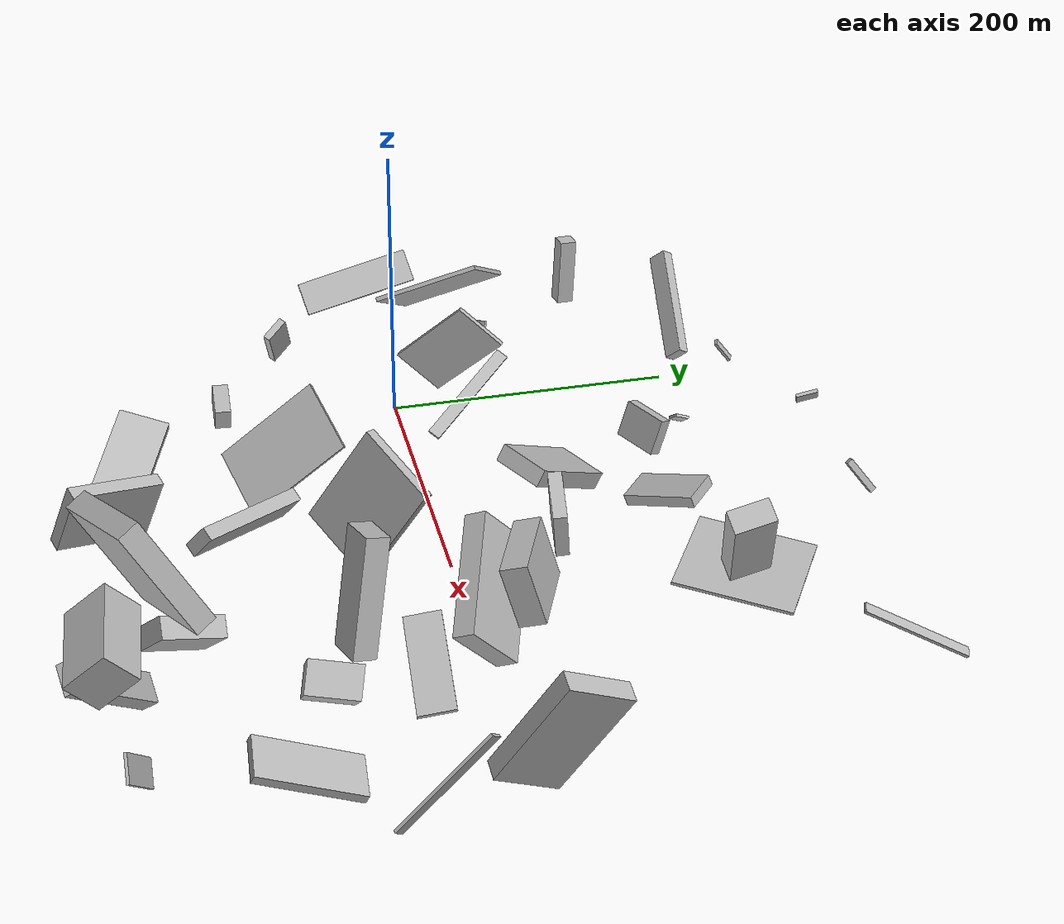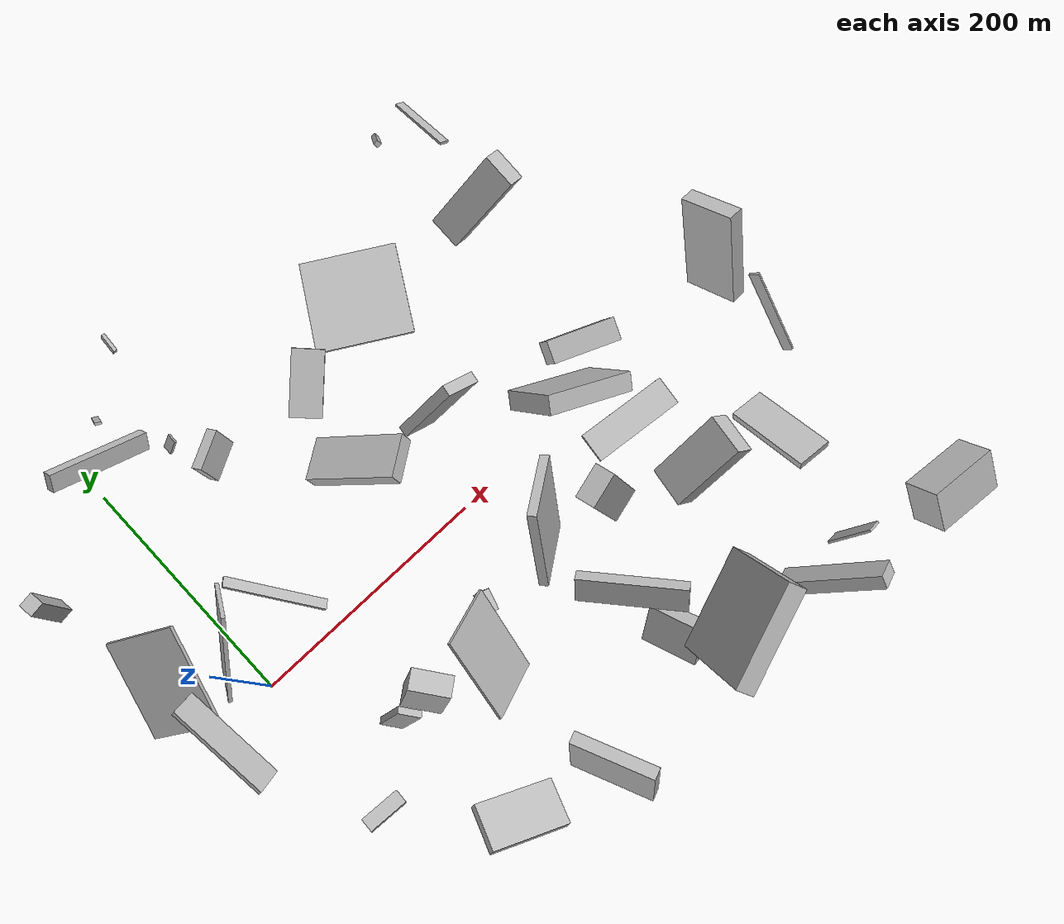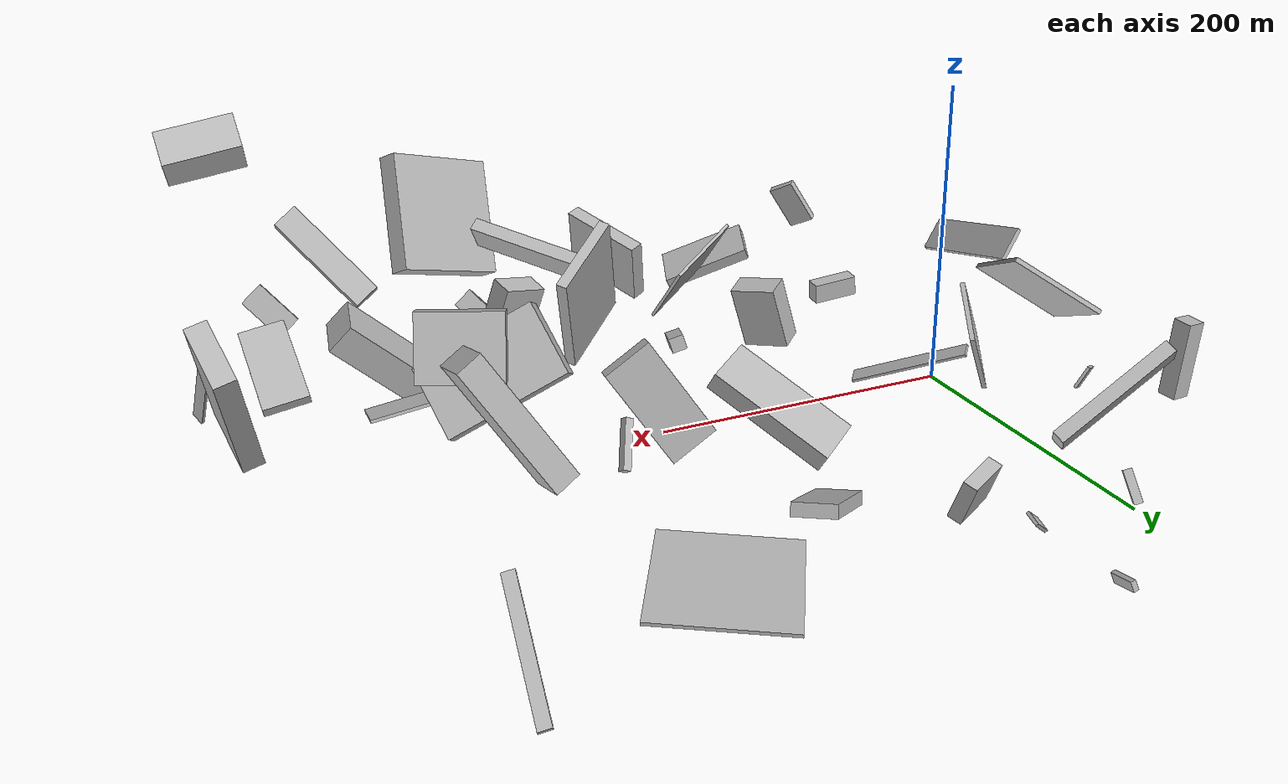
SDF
<sdf version="1.6">
 <world name="default">
  <scene>
   <sky><clouds><speed>12</speed></clouds></sky>
   <ambient>0.4 0.4 0.4 1</ambient>
   <background>0.7 0.7 0.7 1</background>
   <shadows>1</shadows>
  </scene>
  <gravity>0 0 -9.8066</gravity>
  <magnetic_field>6e-06 2.3e-05 -4.2e-05</magnetic_field>
  <physics default="0" name="default_physics" type="ode">
   <ode>
    <solver>
     <type>quick</type>
     <iters>10</iters>
     <sor>1.0</sor>
     <use_dynamic_moi_rescaling>0</use_dynamic_moi_rescaling>
    </solver>
    <constraints>
     <cfm>0</cfm>
     <erp>0.2</erp>
     <contact_max_correcting_vel>100</contact_max_correcting_vel>
     <contact_surface_layer>0.001</contact_surface_layer>
    </constraints>
   </ode>
   <max_step_size>0.004</max_step_size>
   <real_time_factor>1</real_time_factor>
   <real_time_update_rate>250</real_time_update_rate>
  </physics>
  <light name="sun" type="directional">
   <pose>0 0 10 0 0 0</pose>
   <diffuse>0.8 0.8 0.8 1</diffuse>
   <specular>0.2 0.2 0.2 1</specular>
   <attenuation>
    <range>1000</range>
    <constant>0.9</constant>
    <linear>0.01</linear>
    <quadratic>0.001</quadratic>
   </attenuation>
   <direction>-0.5 0.1 -0.9</direction>
  </light>
  <model name="building_1">
   <static>0</static>
   <pose>38.63190235395055 236.04126597552377 41.1396916519658 -2.6471198663712197 0.932345836124314 1.5941881646128018</pose>
   <link name="link">
    <gravity>0</gravity>
    <pose>0 0 1.0 0 0 0</pose>
    <collision name="collision"><geometry><box><size>19 5 2</size></box></geometry></collision>
    <visual name="visual">
     <cast_shadows>0</cast_shadows>
     <geometry><box><size>19 5 2</size></box></geometry>
     <material>
      <script>
       <uri>model://HANNAS_wall/materials/scripts</uri>
       <uri>model://HANNAS_wall/materials/textures</uri>
       <name>vrc/HANNAS_wall</name>
      </script>
     </material>
    </visual>
   </link>
  </model>
  <model name="building_2">
   <static>0</static>
   <pose>259.08048493539104 -173.6271087588978 25.075798798286392 -2.3688773548809356 0.34138990774704253 1.8755277085860944</pose>
   <link name="link">
    <gravity>0</gravity>
    <pose>0 0 15.5 0 0 0</pose>
    <collision name="collision"><geometry><box><size>45 15 31</size></box></geometry></collision>
    <visual name="visual">
     <cast_shadows>0</cast_shadows>
     <geometry><box><size>45 15 31</size></box></geometry>
     <material>
      <script>
       <uri>model://HANNAS_wall/materials/scripts</uri>
       <uri>model://HANNAS_wall/materials/textures</uri>
       <name>vrc/HANNAS_wall</name>
      </script>
     </material>
    </visual>
   </link>
  </model>
  <model name="building_3">
   <static>0</static>
   <pose>70.05203951509768 196.82535542254877 9.121220336357428 2.6676830289068194 0.7783943086531875 -0.3718957070586815</pose>
   <link name="link">
    <gravity>0</gravity>
    <pose>0 0 6.0 0 0 0</pose>
    <collision name="collision"><geometry><box><size>2 10 12</size></box></geometry></collision>
    <visual name="visual">
     <cast_shadows>0</cast_shadows>
     <geometry><box><size>2 10 12</size></box></geometry>
     <material>
      <script>
       <uri>model://HANNAS_wall/materials/scripts</uri>
       <uri>model://HANNAS_wall/materials/textures</uri>
       <name>vrc/HANNAS_wall</name>
      </script>
     </material>
    </visual>
   </link>
  </model>
  <model name="building_4">
   <static>0</static>
   <pose>383.1320415975673 245.40454795834793 44.133537318768404 -0.316377378219944 -0.5237048435464099 -1.7050735993151114</pose>
   <link name="link">
    <gravity>0</gravity>
    <pose>0 0 1.0 0 0 0</pose>
    <collision name="collision"><geometry><box><size>77 7 2</size></box></geometry></collision>
    <visual name="visual">
     <cast_shadows>0</cast_shadows>
     <geometry><box><size>77 7 2</size></box></geometry>
     <material>
      <script>
       <uri>model://HANNAS_wall/materials/scripts</uri>
       <uri>model://HANNAS_wall/materials/textures</uri>
       <name>vrc/HANNAS_wall</name>
      </script>
     </material>
    </visual>
   </link>
  </model>
  <model name="building_5">
   <static>0</static>
   <pose>-56.916125216058674 9.03227319772121 56.53812849885184 0.9189156404831178 -0.8703390747883846 -2.9364095581835175</pose>
   <link name="link">
    <gravity>0</gravity>
    <pose>0 0 39.0 0 0 0</pose>
    <collision name="collision"><geometry><box><size>3 63 78</size></box></geometry></collision>
    <visual name="visual">
     <cast_shadows>0</cast_shadows>
     <geometry><box><size>3 63 78</size></box></geometry>
     <material>
      <script>
       <uri>model://HANNAS_wall/materials/scripts</uri>
       <uri>model://HANNAS_wall/materials/textures</uri>
       <name>vrc/HANNAS_wall</name>
      </script>
     </material>
    </visual>
   </link>
  </model>
  <model name="building_6">
   <static>0</static>
   <pose>24.090662417068508 194.05806674890886 76.6667416465749 2.2174403626864168 -0.5827955219446157 3.0569843757480224</pose>
   <link name="link">
    <gravity>0</gravity>
    <pose>0 0 4.0 0 0 0</pose>
    <collision name="collision"><geometry><box><size>80 14 8</size></box></geometry></collision>
    <visual name="visual">
     <cast_shadows>0</cast_shadows>
     <geometry><box><size>80 14 8</size></box></geometry>
     <material>
      <script>
       <uri>model://HANNAS_wall/materials/scripts</uri>
       <uri>model://HANNAS_wall/materials/textures</uri>
       <name>vrc/HANNAS_wall</name>
      </script>
     </material>
    </visual>
   </link>
  </model>
  <model name="building_7">
   <static>0</static>
   <pose>353.7064749868066 -86.19520589659285 39.00508258421749 1.3726829667805274 -0.7240673701931237 -0.07119017279299611</pose>
   <link name="link">
    <gravity>0</gravity>
    <pose>0 0 16.5 0 0 0</pose>
    <collision name="collision"><geometry><box><size>66 21 33</size></box></geometry></collision>
    <visual name="visual">
     <cast_shadows>0</cast_shadows>
     <geometry><box><size>66 21 33</size></box></geometry>
     <material>
      <script>
       <uri>model://HANNAS_wall/materials/scripts</uri>
       <uri>model://HANNAS_wall/materials/textures</uri>
       <name>vrc/HANNAS_wall</name>
      </script>
     </material>
    </visual>
   </link>
  </model>
  <model name="building_8">
   <static>0</static>
   <pose>90.04146295819805 -79.53852775852259 28.127535313867057 0.5322993208006238 -1.2622411765487753 0.11991431140620133</pose>
   <link name="link">
    <gravity>0</gravity>
    <pose>0 0 8.5 0 0 0</pose>
    <collision name="collision"><geometry><box><size>45 32 17</size></box></geometry></collision>
    <visual name="visual">
     <cast_shadows>0</cast_shadows>
     <geometry><box><size>45 32 17</size></box></geometry>
     <material>
      <script>
       <uri>model://HANNAS_wall/materials/scripts</uri>
       <uri>model://HANNAS_wall/materials/textures</uri>
       <name>vrc/HANNAS_wall</name>
      </script>
     </material>
    </visual>
   </link>
  </model>
  <model name="building_9">
   <static>0</static>
   <pose>-36.753821153604235 -19.50307545493912 87.59729682443658 -2.272015209313348 -0.2051151007045469 1.6440154152920339</pose>
   <link name="link">
    <gravity>0</gravity>
    <pose>0 0 1.5 0 0 0</pose>
    <collision name="collision"><geometry><box><size>80 23 3</size></box></geometry></collision>
    <visual name="visual">
     <cast_shadows>0</cast_shadows>
     <geometry><box><size>80 23 3</size></box></geometry>
     <material>
      <script>
       <uri>model://HANNAS_wall/materials/scripts</uri>
       <uri>model://HANNAS_wall/materials/textures</uri>
       <name>vrc/HANNAS_wall</name>
      </script>
     </material>
    </visual>
   </link>
  </model>
  <model name="building_10">
   <static>0</static>
   <pose>-73.42286726431628 143.6173250577247 33.53616894649154 0.06133107305399381 0.04365892241309228 -3.0091064001080223</pose>
   <link name="link">
    <gravity>0</gravity>
    <pose>0 0 24.5 0 0 0</pose>
    <collision name="collision"><geometry><box><size>12 12 49</size></box></geometry></collision>
    <visual name="visual">
     <cast_shadows>0</cast_shadows>
     <geometry><box><size>12 12 49</size></box></geometry>
     <material>
      <script>
       <uri>model://HANNAS_wall/materials/scripts</uri>
       <uri>model://HANNAS_wall/materials/textures</uri>
       <name>vrc/HANNAS_wall</name>
      </script>
     </material>
    </visual>
   </link>
  </model>
  <model name="building_11">
   <static>0</static>
   <pose>273.7506687179418 -196.15026422645914 94.78446874097193 2.0129805566234173 -0.28238339114511674 0.3575963656567789</pose>
   <link name="link">
    <gravity>0</gravity>
    <pose>0 0 7.5 0 0 0</pose>
    <collision name="collision"><geometry><box><size>80 80 15</size></box></geometry></collision>
    <visual name="visual">
     <cast_shadows>0</cast_shadows>
     <geometry><box><size>80 80 15</size></box></geometry>
     <material>
      <script>
       <uri>model://HANNAS_wall/materials/scripts</uri>
       <uri>model://HANNAS_wall/materials/textures</uri>
       <name>vrc/HANNAS_wall</name>
      </script>
     </material>
    </visual>
   </link>
  </model>
  <model name="building_12">
   <static>0</static>
   <pose>-12.676365885485463 -124.98597027059726 22.740830010981234 2.5530331862472946 -1.4524990745846074 0.5336537273305068</pose>
   <link name="link">
    <gravity>0</gravity>
    <pose>0 0 16.0 0 0 0</pose>
    <collision name="collision"><geometry><box><size>14 11 32</size></box></geometry></collision>
    <visual name="visual">
     <cast_shadows>0</cast_shadows>
     <geometry><box><size>14 11 32</size></box></geometry>
     <material>
      <script>
       <uri>model://HANNAS_wall/materials/scripts</uri>
       <uri>model://HANNAS_wall/materials/textures</uri>
       <name>vrc/HANNAS_wall</name>
      </script>
     </material>
    </visual>
   </link>
  </model>
  <model name="building_13">
   <static>0</static>
   <pose>412.8646129225986 -94.37323064161967 20.017206783496114 0.42763275876697937 -1.1221760297074566 1.1020713526929717</pose>
   <link name="link">
    <gravity>0</gravity>
    <pose>0 0 34.5 0 0 0</pose>
    <collision name="collision"><geometry><box><size>6 30 69</size></box></geometry></collision>
    <visual name="visual">
     <cast_shadows>0</cast_shadows>
     <geometry><box><size>6 30 69</size></box></geometry>
     <material>
      <script>
       <uri>model://HANNAS_wall/materials/scripts</uri>
       <uri>model://HANNAS_wall/materials/textures</uri>
       <name>vrc/HANNAS_wall</name>
      </script>
     </material>
    </visual>
   </link>
  </model>
  <model name="building_14">
   <static>0</static>
   <pose>469.0396319640353 -60.93009688385808 58.68105357405017 -2.6597093150482958 -0.8256237212110216 1.57055343282918</pose>
   <link name="link">
    <gravity>0</gravity>
    <pose>0 0 4.0 0 0 0</pose>
    <collision name="collision"><geometry><box><size>80 2 8</size></box></geometry></collision>
    <visual name="visual">
     <cast_shadows>0</cast_shadows>
     <geometry><box><size>80 2 8</size></box></geometry>
     <material>
      <script>
       <uri>model://HANNAS_wall/materials/scripts</uri>
       <uri>model://HANNAS_wall/materials/textures</uri>
       <name>vrc/HANNAS_wall</name>
      </script>
     </material>
    </visual>
   </link>
  </model>
  <model name="building_15">
   <static>0</static>
   <pose>158.11180322373502 -245.07093742641243 47.40776409838427 -2.227941865606624 -1.2043407110295403 1.0359745221710788</pose>
   <link name="link">
    <gravity>0</gravity>
    <pose>0 0 32.5 0 0 0</pose>
    <collision name="collision"><geometry><box><size>47 10 65</size></box></geometry></collision>
    <visual name="visual">
     <cast_shadows>0</cast_shadows>
     <geometry><box><size>47 10 65</size></box></geometry>
     <material>
      <script>
       <uri>model://HANNAS_wall/materials/scripts</uri>
       <uri>model://HANNAS_wall/materials/textures</uri>
       <name>vrc/HANNAS_wall</name>
      </script>
     </material>
    </visual>
   </link>
  </model>
  <model name="building_16">
   <static>0</static>
   <pose>305.6181552812448 15.930679459890023 45.785015124884566 -0.53886389765386 -0.510509543247418 2.8210029440683524</pose>
   <link name="link">
    <gravity>0</gravity>
    <pose>0 0 23.5 0 0 0</pose>
    <collision name="collision"><geometry><box><size>80 15 47</size></box></geometry></collision>
    <visual name="visual">
     <cast_shadows>0</cast_shadows>
     <geometry><box><size>80 15 47</size></box></geometry>
     <material>
      <script>
       <uri>model://HANNAS_wall/materials/scripts</uri>
       <uri>model://HANNAS_wall/materials/textures</uri>
       <name>vrc/HANNAS_wall</name>
      </script>
     </material>
    </visual>
   </link>
  </model>
  <model name="building_17">
   <static>0</static>
   <pose>232.47595183376495 58.5818098835678 54.53181536874116 1.4466558020564686 -0.5902501232157829 3.047282106402702</pose>
   <link name="link">
    <gravity>0</gravity>
    <pose>0 0 4.5 0 0 0</pose>
    <collision name="collision"><geometry><box><size>31 69 9</size></box></geometry></collision>
    <visual name="visual">
     <cast_shadows>0</cast_shadows>
     <geometry><box><size>31 69 9</size></box></geometry>
     <material>
      <script>
       <uri>model://HANNAS_wall/materials/scripts</uri>
       <uri>model://HANNAS_wall/materials/textures</uri>
       <name>vrc/HANNAS_wall</name>
      </script>
     </material>
    </visual>
   </link>
  </model>
  <model name="building_18">
   <static>0</static>
   <pose>469.9073132064575 5.950312077972356 76.83739120368956 1.2940398641867357 -0.46050019467706393 -1.4104808909936306</pose>
   <link name="link">
    <gravity>0</gravity>
    <pose>0 0 6.5 0 0 0</pose>
    <collision name="collision"><geometry><box><size>44 80 13</size></box></geometry></collision>
    <visual name="visual">
     <cast_shadows>0</cast_shadows>
     <geometry><box><size>44 80 13</size></box></geometry>
     <material>
      <script>
       <uri>model://HANNAS_wall/materials/scripts</uri>
       <uri>model://HANNAS_wall/materials/textures</uri>
       <name>vrc/HANNAS_wall</name>
      </script>
     </material>
    </visual>
   </link>
  </model>
  <model name="building_19">
   <static>0</static>
   <pose>206.4614505003548 -71.34830422387536 89.80419176785261 -2.726388158167691 1.0348634400155008 -2.063799696818753</pose>
   <link name="link">
    <gravity>0</gravity>
    <pose>0 0 28.0 0 0 0</pose>
    <collision name="collision"><geometry><box><size>80 7 56</size></box></geometry></collision>
    <visual name="visual">
     <cast_shadows>0</cast_shadows>
     <geometry><box><size>80 7 56</size></box></geometry>
     <material>
      <script>
       <uri>model://HANNAS_wall/materials/scripts</uri>
       <uri>model://HANNAS_wall/materials/textures</uri>
       <name>vrc/HANNAS_wall</name>
      </script>
     </material>
    </visual>
   </link>
  </model>
  <model name="building_20">
   <static>0</static>
   <pose>330.908446621909 154.34691602926628 71.80066004925293 0.5614711017377177 -0.22552737481562918 1.5802169437900735</pose>
   <link name="link">
    <gravity>0</gravity>
    <pose>0 0 40.0 0 0 0</pose>
    <collision name="collision"><geometry><box><size>26 15 80</size></box></geometry></collision>
    <visual name="visual">
     <cast_shadows>0</cast_shadows>
     <geometry><box><size>26 15 80</size></box></geometry>
     <material>
      <script>
       <uri>model://HANNAS_wall/materials/scripts</uri>
       <uri>model://HANNAS_wall/materials/textures</uri>
       <name>vrc/HANNAS_wall</name>
      </script>
     </material>
    </visual>
   </link>
  </model>
  <model name="building_21">
   <static>0</static>
   <pose>375.0943390302742 -44.98481087216515 27.094226844738504 0.7590923091521211 -1.351259432527991 -0.8570929412445419</pose>
   <link name="link">
    <gravity>0</gravity>
    <pose>0 0 40.0 0 0 0</pose>
    <collision name="collision"><geometry><box><size>2 24 80</size></box></geometry></collision>
    <visual name="visual">
     <cast_shadows>0</cast_shadows>
     <geometry><box><size>2 24 80</size></box></geometry>
     <material>
      <script>
       <uri>model://HANNAS_wall/materials/scripts</uri>
       <uri>model://HANNAS_wall/materials/textures</uri>
       <name>vrc/HANNAS_wall</name>
      </script>
     </material>
    </visual>
   </link>
  </model>
  <model name="building_22">
   <static>0</static>
   <pose>79.31840213147106 -179.41688083132044 28.97593504943909 -1.3075624714774647 -0.4025226547070357 2.684262149412127</pose>
   <link name="link">
    <gravity>0</gravity>
    <pose>0 0 17.5 0 0 0</pose>
    <collision name="collision"><geometry><box><size>63 8 35</size></box></geometry></collision>
    <visual name="visual">
     <cast_shadows>0</cast_shadows>
     <geometry><box><size>63 8 35</size></box></geometry>
     <material>
      <script>
       <uri>model://HANNAS_wall/materials/scripts</uri>
       <uri>model://HANNAS_wall/materials/textures</uri>
       <name>vrc/HANNAS_wall</name>
      </script>
     </material>
    </visual>
   </link>
  </model>
  <model name="building_23">
   <static>0</static>
   <pose>53.73033552166649 -87.43007882544643 91.81454722594738 0.4743519549689461 0.28692750986378646 0.7694057049664796</pose>
   <link name="link">
    <gravity>0</gravity>
    <pose>0 0 15.0 0 0 0</pose>
    <collision name="collision"><geometry><box><size>5 17 30</size></box></geometry></collision>
    <visual name="visual">
     <cast_shadows>0</cast_shadows>
     <geometry><box><size>5 17 30</size></box></geometry>
     <material>
      <script>
       <uri>model://HANNAS_wall/materials/scripts</uri>
       <uri>model://HANNAS_wall/materials/textures</uri>
       <name>vrc/HANNAS_wall</name>
      </script>
     </material>
    </visual>
   </link>
  </model>
  <model name="building_24">
   <static>0</static>
   <pose>113.13391061299609 -106.14905127580418 75.50090666815768 2.2393039007734643 -0.7054820553704474 1.4281810255800276</pose>
   <link name="link">
    <gravity>0</gravity>
    <pose>0 0 25.5 0 0 0</pose>
    <collision name="collision"><geometry><box><size>80 2 51</size></box></geometry></collision>
    <visual name="visual">
     <cast_shadows>0</cast_shadows>
     <geometry><box><size>80 2 51</size></box></geometry>
     <material>
      <script>
       <uri>model://HANNAS_wall/materials/scripts</uri>
       <uri>model://HANNAS_wall/materials/textures</uri>
       <name>vrc/HANNAS_wall</name>
      </script>
     </material>
    </visual>
   </link>
  </model>
  <model name="building_25">
   <static>0</static>
   <pose>291.8829026198235 -68.11969506033907 52.37775154882862 1.7665078385865312 -0.22662096693393896 -1.3591304577239622</pose>
   <link name="link">
    <gravity>0</gravity>
    <pose>0 0 14.0 0 0 0</pose>
    <collision name="collision"><geometry><box><size>16 80 28</size></box></geometry></collision>
    <visual name="visual">
     <cast_shadows>0</cast_shadows>
     <geometry><box><size>16 80 28</size></box></geometry>
     <material>
      <script>
       <uri>model://HANNAS_wall/materials/scripts</uri>
       <uri>model://HANNAS_wall/materials/textures</uri>
       <name>vrc/HANNAS_wall</name>
      </script>
     </material>
    </visual>
   </link>
  </model>
  <model name="building_26">
   <static>0</static>
   <pose>184.7540058945091 144.84309067771687 20.02573673743094 -1.21016647742566 1.2137445271062395 1.1357134398871895</pose>
   <link name="link">
    <gravity>0</gravity>
    <pose>0 0 13.0 0 0 0</pose>
    <collision name="collision"><geometry><box><size>8 54 26</size></box></geometry></collision>
    <visual name="visual">
     <cast_shadows>0</cast_shadows>
     <geometry><box><size>8 54 26</size></box></geometry>
     <material>
      <script>
       <uri>model://HANNAS_wall/materials/scripts</uri>
       <uri>model://HANNAS_wall/materials/textures</uri>
       <name>vrc/HANNAS_wall</name>
      </script>
     </material>
    </visual>
   </link>
  </model>
  <model name="building_27">
   <static>0</static>
   <pose>162.9110749187639 72.81470629433508 37.89984185077868 0.5286512364600636 -0.16607799700566822 -2.5144837993577234</pose>
   <link name="link">
    <gravity>0</gravity>
    <pose>0 0 6.0 0 0 0</pose>
    <collision name="collision"><geometry><box><size>35 80 12</size></box></geometry></collision>
    <visual name="visual">
     <cast_shadows>0</cast_shadows>
     <geometry><box><size>35 80 12</size></box></geometry>
     <material>
      <script>
       <uri>model://HANNAS_wall/materials/scripts</uri>
       <uri>model://HANNAS_wall/materials/textures</uri>
       <name>vrc/HANNAS_wall</name>
      </script>
     </material>
    </visual>
   </link>
  </model>
  <model name="building_28">
   <static>0</static>
   <pose>86.64809688298462 159.83509245215916 14.867516394825268 -2.97973447963684 -1.2289418466363942 1.9321832286270257</pose>
   <link name="link">
    <gravity>0</gravity>
    <pose>0 0 4.5 0 0 0</pose>
    <collision name="collision"><geometry><box><size>26 33 9</size></box></geometry></collision>
    <visual name="visual">
     <cast_shadows>0</cast_shadows>
     <geometry><box><size>26 33 9</size></box></geometry>
     <material>
      <script>
       <uri>model://HANNAS_wall/materials/scripts</uri>
       <uri>model://HANNAS_wall/materials/textures</uri>
       <name>vrc/HANNAS_wall</name>
      </script>
     </material>
    </visual>
   </link>
  </model>
  <model name="building_29">
   <static>0</static>
   <pose>-5.121487628955514 26.91281276959053 58.27189419353357 2.326669713792076 -0.2538781999047815 2.566072153343572</pose>
   <link name="link">
    <gravity>0</gravity>
    <pose>0 0 20.0 0 0 0</pose>
    <collision name="collision"><geometry><box><size>3 80 40</size></box></geometry></collision>
    <visual name="visual">
     <cast_shadows>0</cast_shadows>
     <geometry><box><size>3 80 40</size></box></geometry>
     <material>
      <script>
       <uri>model://HANNAS_wall/materials/scripts</uri>
       <uri>model://HANNAS_wall/materials/textures</uri>
       <name>vrc/HANNAS_wall</name>
      </script>
     </material>
    </visual>
   </link>
  </model>
  <model name="building_30">
   <static>0</static>
   <pose>232.29022716589458 -141.18574778324438 74.25815358472487 -0.6620646797056629 -0.17143222170565992 -0.8771291761127835</pose>
   <link name="link">
    <gravity>0</gravity>
    <pose>0 0 10.5 0 0 0</pose>
    <collision name="collision"><geometry><box><size>80 9 21</size></box></geometry></collision>
    <visual name="visual">
     <cast_shadows>0</cast_shadows>
     <geometry><box><size>80 9 21</size></box></geometry>
     <material>
      <script>
       <uri>model://HANNAS_wall/materials/scripts</uri>
       <uri>model://HANNAS_wall/materials/textures</uri>
       <name>vrc/HANNAS_wall</name>
      </script>
     </material>
    </visual>
   </link>
  </model>
  <model name="building_31">
   <static>0</static>
   <pose>427.0652635424617 -222.02140350985684 141.0900628592797 0.7434654449755359 0.1672346186827556 -0.10238771913411887</pose>
   <link name="link">
    <gravity>0</gravity>
    <pose>0 0 12.5 0 0 0</pose>
    <collision name="collision"><geometry><box><size>52 31 25</size></box></geometry></collision>
    <visual name="visual">
     <cast_shadows>0</cast_shadows>
     <geometry><box><size>52 31 25</size></box></geometry>
     <material>
      <script>
       <uri>model://HANNAS_wall/materials/scripts</uri>
       <uri>model://HANNAS_wall/materials/textures</uri>
       <name>vrc/HANNAS_wall</name>
      </script>
     </material>
    </visual>
   </link>
  </model>
  <model name="building_32">
   <static>0</static>
   <pose>71.81337519526517 14.481796011065361 20.073249677948287 -1.0894686515604937 0.43675493422411404 0.8443095833208666</pose>
   <link name="link">
    <gravity>0</gravity>
    <pose>0 0 40.0 0 0 0</pose>
    <collision name="collision"><geometry><box><size>9 2 80</size></box></geometry></collision>
    <visual name="visual">
     <cast_shadows>0</cast_shadows>
     <geometry><box><size>9 2 80</size></box></geometry>
     <material>
      <script>
       <uri>model://HANNAS_wall/materials/scripts</uri>
       <uri>model://HANNAS_wall/materials/textures</uri>
       <name>vrc/HANNAS_wall</name>
      </script>
     </material>
    </visual>
   </link>
  </model>
  <model name="building_33">
   <static>0</static>
   <pose>332.1475122397224 11.857530197415638 87.90691171260198 1.274083072616454 0.00713529618106945 2.745975823867752</pose>
   <link name="link">
    <gravity>0</gravity>
    <pose>0 0 8.5 0 0 0</pose>
    <collision name="collision"><geometry><box><size>51 41 17</size></box></geometry></collision>
    <visual name="visual">
     <cast_shadows>0</cast_shadows>
     <geometry><box><size>51 41 17</size></box></geometry>
     <material>
      <script>
       <uri>model://HANNAS_wall/materials/scripts</uri>
       <uri>model://HANNAS_wall/materials/textures</uri>
       <name>vrc/HANNAS_wall</name>
      </script>
     </material>
    </visual>
   </link>
  </model>
  <model name="building_34">
   <static>0</static>
   <pose>286.8721185714205 163.54595473428327 10.887095887314231 -1.5959830297525028 0.077877266166814 1.0358318290911803</pose>
   <link name="link">
    <gravity>0</gravity>
    <pose>0 0 40.0 0 0 0</pose>
    <collision name="collision"><geometry><box><size>80 2 80</size></box></geometry></collision>
    <visual name="visual">
     <cast_shadows>0</cast_shadows>
     <geometry><box><size>80 2 80</size></box></geometry>
     <material>
      <script>
       <uri>model://HANNAS_wall/materials/scripts</uri>
       <uri>model://HANNAS_wall/materials/textures</uri>
       <name>vrc/HANNAS_wall</name>
      </script>
     </material>
    </visual>
   </link>
  </model>
  <model name="building_35">
   <static>0</static>
   <pose>329.63291392686904 231.46810864057832 112.79419726295004 0.47805542078839025 0.5536327588166904 -1.2814200120032735</pose>
   <link name="link">
    <gravity>0</gravity>
    <pose>0 0 12.0 0 0 0</pose>
    <collision name="collision"><geometry><box><size>4 4 24</size></box></geometry></collision>
    <visual name="visual">
     <cast_shadows>0</cast_shadows>
     <geometry><box><size>4 4 24</size></box></geometry>
     <material>
      <script>
       <uri>model://HANNAS_wall/materials/scripts</uri>
       <uri>model://HANNAS_wall/materials/textures</uri>
       <name>vrc/HANNAS_wall</name>
      </script>
     </material>
    </visual>
   </link>
  </model>
  <model name="building_36">
   <static>0</static>
   <pose>329.8427210860249 -208.19203020723748 37.56847927901059 -0.667324469339225 -0.5894838517636315 -2.9585272498814073</pose>
   <link name="link">
    <gravity>0</gravity>
    <pose>0 0 40.0 0 0 0</pose>
    <collision name="collision"><geometry><box><size>19 11 80</size></box></geometry></collision>
    <visual name="visual">
     <cast_shadows>0</cast_shadows>
     <geometry><box><size>19 11 80</size></box></geometry>
     <material>
      <script>
       <uri>model://HANNAS_wall/materials/scripts</uri>
       <uri>model://HANNAS_wall/materials/textures</uri>
       <name>vrc/HANNAS_wall</name>
      </script>
     </material>
    </visual>
   </link>
  </model>
  <model name="building_37">
   <static>0</static>
   <pose>82.69045752493662 285.5210934120447 19.707457722491636 -0.31198278995813017 0.20603626429407498 -1.649088010887684</pose>
   <link name="link">
    <gravity>0</gravity>
    <pose>0 0 3.0 0 0 0</pose>
    <collision name="collision"><geometry><box><size>16 3 6</size></box></geometry></collision>
    <visual name="visual">
     <cast_shadows>0</cast_shadows>
     <geometry><box><size>16 3 6</size></box></geometry>
     <material>
      <script>
       <uri>model://HANNAS_wall/materials/scripts</uri>
       <uri>model://HANNAS_wall/materials/textures</uri>
       <name>vrc/HANNAS_wall</name>
      </script>
     </material>
    </visual>
   </link>
  </model>
  <model name="building_38">
   <static>0</static>
   <pose>-62.089675057713684 76.14045529254123 20.10244286785841 -2.5430780057104134 1.0598142706355744 -0.3973234363374108</pose>
   <link name="link">
    <gravity>0</gravity>
    <pose>0 0 1.0 0 0 0</pose>
    <collision name="collision"><geometry><box><size>16 11 2</size></box></geometry></collision>
    <visual name="visual">
     <cast_shadows>0</cast_shadows>
     <geometry><box><size>16 11 2</size></box></geometry>
     <material>
      <script>
       <uri>model://HANNAS_wall/materials/scripts</uri>
       <uri>model://HANNAS_wall/materials/textures</uri>
       <name>vrc/HANNAS_wall</name>
      </script>
     </material>
    </visual>
   </link>
  </model>
  <model name="building_39">
   <static>0</static>
   <pose>384.5958849880539 -212.02076009285113 22.51039779057383 0.35924972930641136 0.7276376799930926 -0.04537922219298738</pose>
   <link name="link">
    <gravity>0</gravity>
    <pose>0 0 17.5 0 0 0</pose>
    <collision name="collision"><geometry><box><size>18 2 35</size></box></geometry></collision>
    <visual name="visual">
     <cast_shadows>0</cast_shadows>
     <geometry><box><size>18 2 35</size></box></geometry>
     <material>
      <script>
       <uri>model://HANNAS_wall/materials/scripts</uri>
       <uri>model://HANNAS_wall/materials/textures</uri>
       <name>vrc/HANNAS_wall</name>
      </script>
     </material>
    </visual>
   </link>
  </model>
  <model name="building_40">
   <static>0</static>
   <pose>160.86092091600713 -68.1408989700106 33.887844190878994 -2.8386990604581697 -0.12966478649627536 1.2712662549287421</pose>
   <link name="link">
    <gravity>0</gravity>
    <pose>0 0 5.0 0 0 0</pose>
    <collision name="collision"><geometry><box><size>17 10 10</size></box></geometry></collision>
    <visual name="visual">
     <cast_shadows>0</cast_shadows>
     <geometry><box><size>17 10 10</size></box></geometry>
     <material>
      <script>
       <uri>model://HANNAS_wall/materials/scripts</uri>
       <uri>model://HANNAS_wall/materials/textures</uri>
       <name>vrc/HANNAS_wall</name>
      </script>
     </material>
    </visual>
   </link>
  </model>
 </world>
</sdf>
